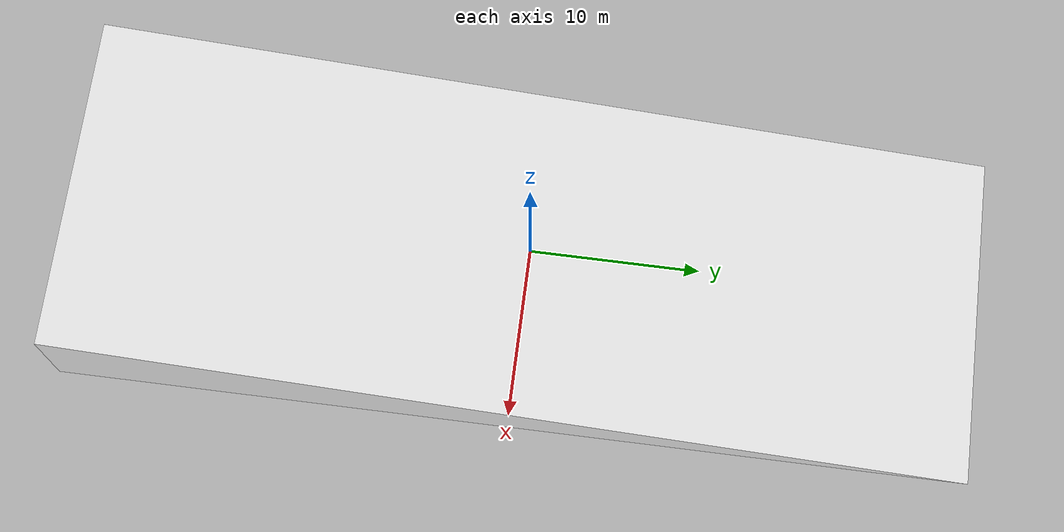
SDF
<?xml version="1.0"?>
<sdf version="1.5">
  <model name="ramp">
    <!-- Make the ramp static so it doesn't move upon collisions -->
    <static>true</static>

    <link name="ramp_link">
      <!-- Optional: Set the initial pose of the ramp -->
      <pose>0 0 0 0 0 0</pose>

      <!-- Inertial properties are required even for static models -->
      <inertial>
        <mass>1.0</mass>
        <inertia>
          <ixx>1.0</ixx>
          <ixy>0.0</ixy>
          <ixz>0.0</ixz>
          <iyy>1.0</iyy>
          <iyz>0.0</iyz>
          <izz>1.0</izz>
        </inertia>
      </inertial>

      <!-- Collision element using the ramp mesh with scaling -->
      <collision name="collision">
        <geometry>
          <mesh>
            <uri>model://ramp/meshes/ramp_19.stl</uri>
          </mesh>
        </geometry>
        <scale>0.5 0.5 0.5</scale> <!-- Scale down by 50% -->
        <surface>
          <contact>
            <collide_bitmask>1</collide_bitmask>
          </contact>
          <friction>
            <ode>
              <mu>1.0</mu> <!-- Friction coefficient -->
              <mu2>1.0</mu2>
            </ode>
          </friction>
          <bounce>
            <restitution_coefficient>0.0</restitution_coefficient>
          </bounce>
        </surface>
      </collision>

      <!-- Visual element using the ramp mesh with scaling and white material -->
      <visual name="visual">
        <geometry>
          <mesh>
            <uri>model://ramp/meshes/ramp_19.stl</uri>
          </mesh>
        </geometry>
        <scale>0.5 0.5 0.5</scale> <!-- Scale down by 50% -->
        <material>
          <ambient>1 1 1 1</ambient>      <!-- Ambient color (white) -->
          <diffuse>0.9 0.9 0.9 1</diffuse>      <!-- Diffuse color (white) -->
          <specular>0.5 0.5 0.5 1</specular> <!-- Specular highlights -->
          <emissive>0 0 0 1</emissive>    <!-- Emissive color (none) -->
        </material>
      </visual>
    </link>
  </model>
</sdf>
